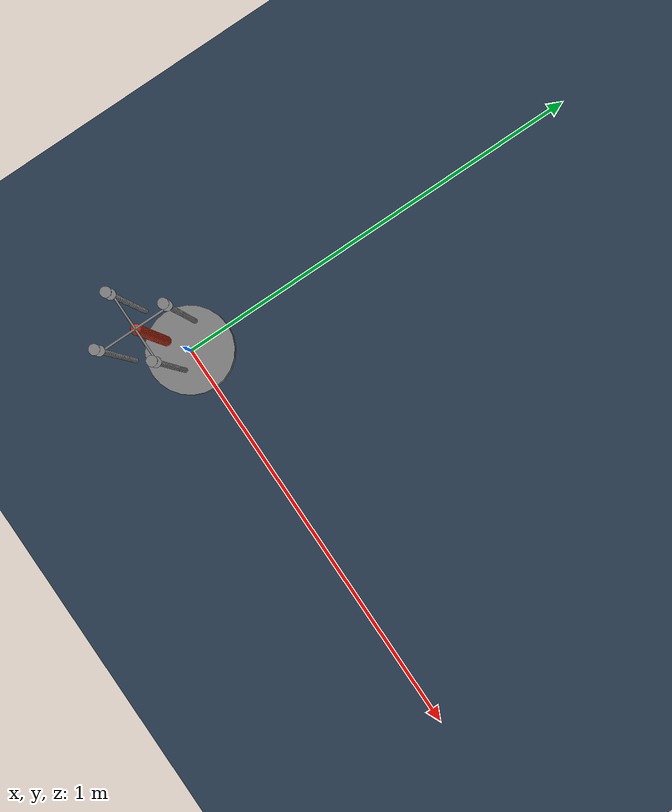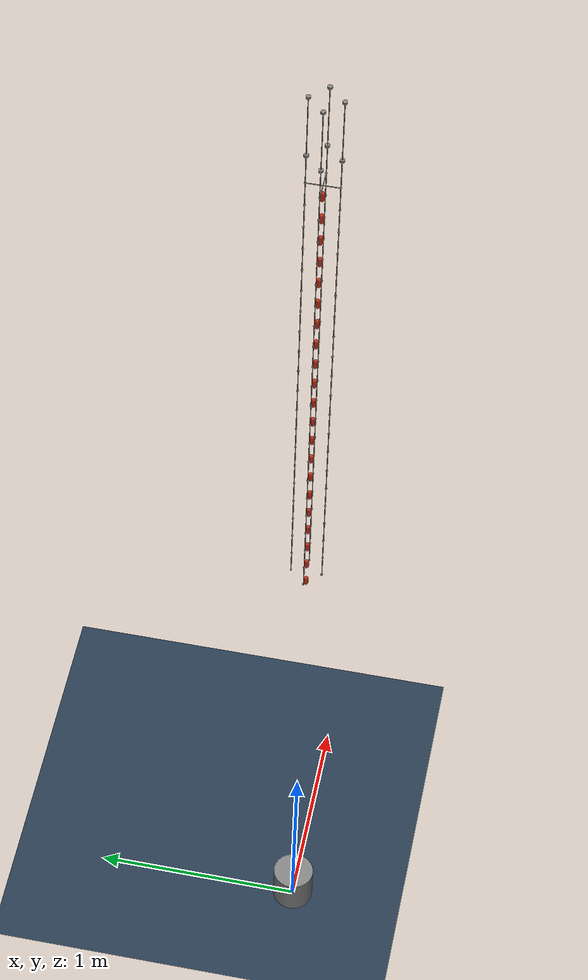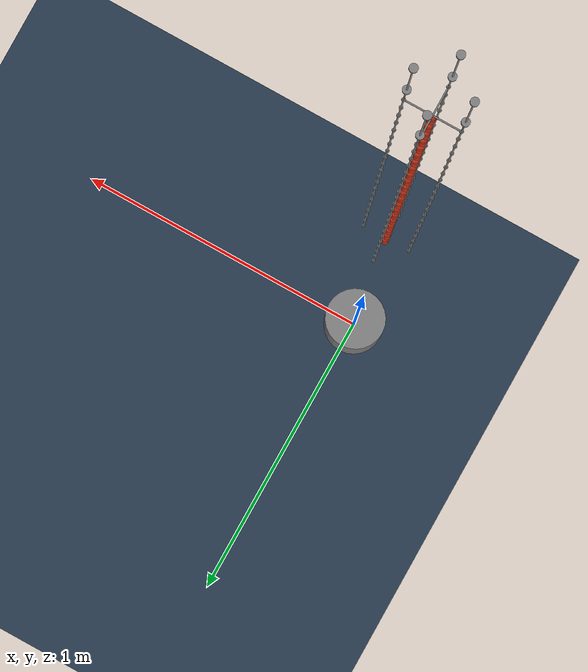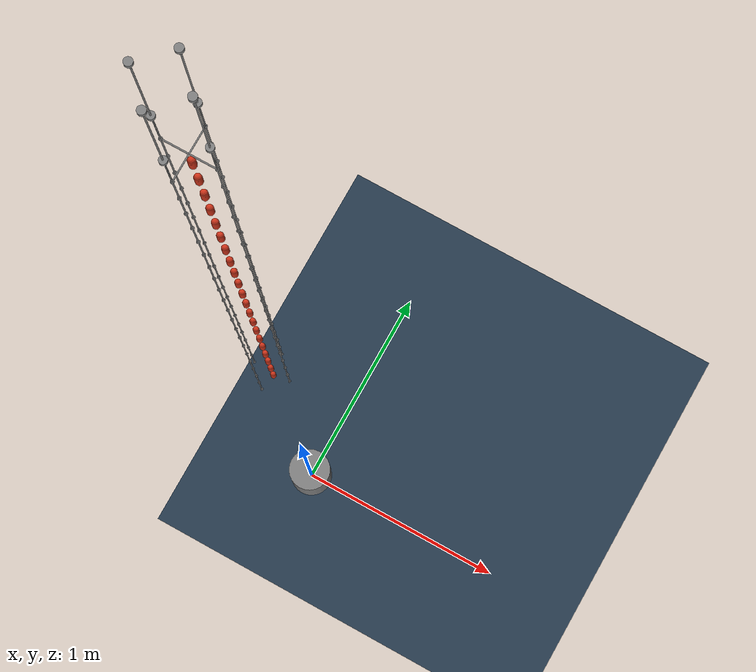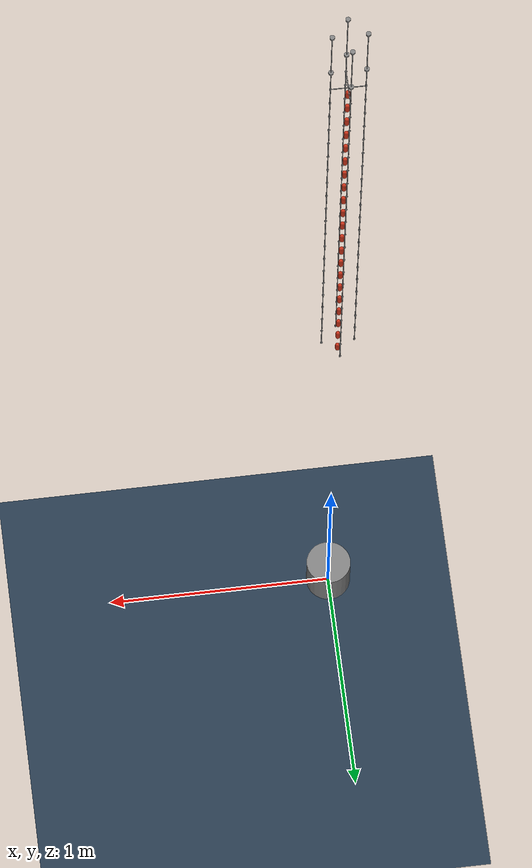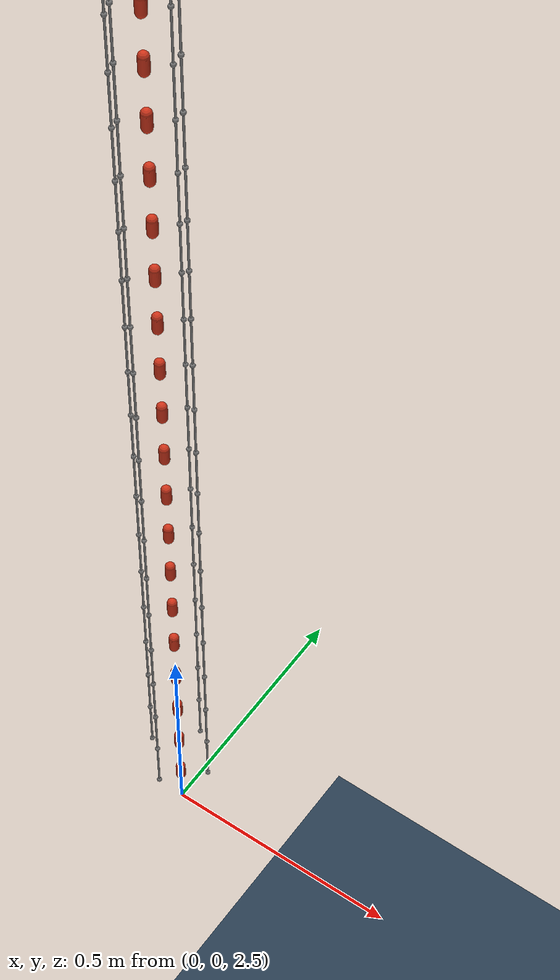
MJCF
<mujoco model="TendonModel">

    <include file="tendon_scene.xml"/>

    <option timestep="0.002" tolerance="1e-10" jacobian="dense" gravity="0 0 -0.981" />
    <!--collision="dynamic"/-->

    <size nconmax="100" njmax="300" nstack="50000"/>

    <worldbody>
    <body name="rope20" pos="0 0 5" axisangle="0 1 0 180">
        <body>
        <geom type="capsule" pos="0 0 0.0000" size=".01 .015" density="100" rgba=".8 .2 .1 1"/>
        <site name="s_0_1_1" pos="-0.0700 0 -0.0600"/>
        <site name="s_0_2_1" pos="0.0700 0 -0.0600"/>
        <site name="s_0_3_1" pos="0 -0.0700 -0.0600"/>
        <site name="s_0_4_1" pos="0 0.0700 -0.0600"/>
        <body>
        <geom type="capsule" pos="0 0 0.1200" size=".01 .015" density="100" rgba=".8 .2 .1 1"/>
        <joint type="hinge" pos="0 0 0.0600" axis="1 0 0" damping="1.0000" stiffness="0.50"/>
        <joint type="hinge" pos="0 0 0.0600" axis="0 1 0" damping="1.0000" stiffness="0.50"/>
        <site name="s_0_1_2" pos="-0.0700 0 0.0600"/>
        <site name="s_0_2_2" pos="0.0700 0 0.0600"/>
        <site name="s_0_3_2" pos="0 -0.0700 0.0600"/>
        <site name="s_0_4_2" pos="0 0.0700 0.0600"/>
        <body>
        <geom type="capsule" pos="0 0 0.2400" size=".01 .015" density="100" rgba=".8 .2 .1 1"/>
        <joint type="hinge" pos="0 0 0.1800" axis="1 0 0" damping="1.0000" stiffness="0.50"/>
        <joint type="hinge" pos="0 0 0.1800" axis="0 1 0" damping="1.0000" stiffness="0.50"/>
        <site name="s_0_1_3" pos="-0.0700 0 0.1800"/>
        <site name="s_0_2_3" pos="0.0700 0 0.1800"/>
        <site name="s_0_3_3" pos="0 -0.0700 0.1800"/>
        <site name="s_0_4_3" pos="0 0.0700 0.1800"/>
        <body>
        <geom type="capsule" pos="0 0 0.3600" size=".01 .015" density="100" rgba=".8 .2 .1 1"/>
        <joint type="hinge" pos="0 0 0.3000" axis="1 0 0" damping="1.0000" stiffness="0.50"/>
        <joint type="hinge" pos="0 0 0.3000" axis="0 1 0" damping="1.0000" stiffness="0.50"/>
        <site name="s_0_1_4" pos="-0.0700 0 0.3000"/>
        <site name="s_0_2_4" pos="0.0700 0 0.3000"/>
        <site name="s_0_3_4" pos="0 -0.0700 0.3000"/>
        <site name="s_0_4_4" pos="0 0.0700 0.3000"/>
        <body>
        <geom type="capsule" pos="0 0 0.4800" size=".01 .015" density="100" rgba=".8 .2 .1 1"/>
        <joint type="hinge" pos="0 0 0.4200" axis="1 0 0" damping="1.0000" stiffness="0.50"/>
        <joint type="hinge" pos="0 0 0.4200" axis="0 1 0" damping="1.0000" stiffness="0.50"/>
        <site name="s_0_1_5" pos="-0.0700 0 0.4200"/>
        <site name="s_0_2_5" pos="0.0700 0 0.4200"/>
        <site name="s_0_3_5" pos="0 -0.0700 0.4200"/>
        <site name="s_0_4_5" pos="0 0.0700 0.4200"/>
        <body>
        <geom type="capsule" pos="0 0 0.6000" size=".01 .015" density="100" rgba=".8 .2 .1 1"/>
        <joint type="hinge" pos="0 0 0.5400" axis="1 0 0" damping="1.0000" stiffness="0.50"/>
        <joint type="hinge" pos="0 0 0.5400" axis="0 1 0" damping="1.0000" stiffness="0.50"/>
        <site name="s_0_1_6" pos="-0.0700 0 0.5400"/>
        <site name="s_0_2_6" pos="0.0700 0 0.5400"/>
        <site name="s_0_3_6" pos="0 -0.0700 0.5400"/>
        <site name="s_0_4_6" pos="0 0.0700 0.5400"/>
        <body>
        <geom type="capsule" pos="0 0 0.7200" size=".01 .015" density="100" rgba=".8 .2 .1 1"/>
        <joint type="hinge" pos="0 0 0.6600" axis="1 0 0" damping="1.0000" stiffness="0.50"/>
        <joint type="hinge" pos="0 0 0.6600" axis="0 1 0" damping="1.0000" stiffness="0.50"/>
        <site name="s_0_1_7" pos="-0.0700 0 0.6600"/>
        <site name="s_0_2_7" pos="0.0700 0 0.6600"/>
        <site name="s_0_3_7" pos="0 -0.0700 0.6600"/>
        <site name="s_0_4_7" pos="0 0.0700 0.6600"/>
        <body>
        <geom type="capsule" pos="0 0 0.8400" size=".01 .015" density="100" rgba=".8 .2 .1 1"/>
        <joint type="hinge" pos="0 0 0.7800" axis="1 0 0" damping="1.0000" stiffness="0.50"/>
        <joint type="hinge" pos="0 0 0.7800" axis="0 1 0" damping="1.0000" stiffness="0.50"/>
        <site name="s_0_1_8" pos="-0.0700 0 0.7800"/>
        <site name="s_0_2_8" pos="0.0700 0 0.7800"/>
        <site name="s_0_3_8" pos="0 -0.0700 0.7800"/>
        <site name="s_0_4_8" pos="0 0.0700 0.7800"/>
        <body>
        <geom type="capsule" pos="0 0 0.9600" size=".01 .015" density="100" rgba=".8 .2 .1 1"/>
        <joint type="hinge" pos="0 0 0.9000" axis="1 0 0" damping="1.0000" stiffness="0.50"/>
        <joint type="hinge" pos="0 0 0.9000" axis="0 1 0" damping="1.0000" stiffness="0.50"/>
        <site name="s_0_1_9" pos="-0.0700 0 0.9000"/>
        <site name="s_0_2_9" pos="0.0700 0 0.9000"/>
        <site name="s_0_3_9" pos="0 -0.0700 0.9000"/>
        <site name="s_0_4_9" pos="0 0.0700 0.9000"/>
        <body>
        <geom type="capsule" pos="0 0 1.0800" size=".01 .015" density="100" rgba=".8 .2 .1 1"/>
        <joint type="hinge" pos="0 0 1.0200" axis="1 0 0" damping="1.0000" stiffness="0.50"/>
        <joint type="hinge" pos="0 0 1.0200" axis="0 1 0" damping="1.0000" stiffness="0.50"/>
        <site name="s_0_1_10" pos="-0.0700 0 1.0200"/>
        <site name="s_0_2_10" pos="0.0700 0 1.0200"/>
        <site name="s_0_3_10" pos="0 -0.0700 1.0200"/>
        <site name="s_0_4_10" pos="0 0.0700 1.0200"/>
        <body>
        <geom type="capsule" pos="0 0 1.2000" size=".01 .015" density="100" rgba=".8 .2 .1 1"/>
        <joint type="hinge" pos="0 0 1.1400" axis="1 0 0" damping="1.0000" stiffness="0.50"/>
        <joint type="hinge" pos="0 0 1.1400" axis="0 1 0" damping="1.0000" stiffness="0.50"/>
        <site name="s_0_1_11" pos="-0.0700 0 1.1400"/>
        <site name="s_0_2_11" pos="0.0700 0 1.1400"/>
        <site name="s_0_3_11" pos="0 -0.0700 1.1400"/>
        <site name="s_0_4_11" pos="0 0.0700 1.1400"/>
        <body>
        <geom type="capsule" pos="0 0 1.3200" size=".01 .015" density="100" rgba=".8 .2 .1 1"/>
        <joint type="hinge" pos="0 0 1.2600" axis="1 0 0" damping="1.0000" stiffness="0.50"/>
        <joint type="hinge" pos="0 0 1.2600" axis="0 1 0" damping="1.0000" stiffness="0.50"/>
        <site name="s_1_1_12" pos="-0.0700 0 1.2600"/>
        <site name="s_1_2_12" pos="0.0700 0 1.2600"/>
        <site name="s_1_3_12" pos="0 -0.0700 1.2600"/>
        <site name="s_1_4_12" pos="0 0.0700 1.2600"/>
        <body>
        <geom type="capsule" pos="0 0 1.4400" size=".01 .015" density="100" rgba=".8 .2 .1 1"/>
        <joint type="hinge" pos="0 0 1.3800" axis="1 0 0" damping="1.0000" stiffness="0.50"/>
        <joint type="hinge" pos="0 0 1.3800" axis="0 1 0" damping="1.0000" stiffness="0.50"/>
        <site name="s_1_1_13" pos="-0.0700 0 1.3800"/>
        <site name="s_1_2_13" pos="0.0700 0 1.3800"/>
        <site name="s_1_3_13" pos="0 -0.0700 1.3800"/>
        <site name="s_1_4_13" pos="0 0.0700 1.3800"/>
        <body>
        <geom type="capsule" pos="0 0 1.5600" size=".01 .015" density="100" rgba=".8 .2 .1 1"/>
        <joint type="hinge" pos="0 0 1.5000" axis="1 0 0" damping="1.0000" stiffness="0.50"/>
        <joint type="hinge" pos="0 0 1.5000" axis="0 1 0" damping="1.0000" stiffness="0.50"/>
        <site name="s_1_1_14" pos="-0.0700 0 1.5000"/>
        <site name="s_1_2_14" pos="0.0700 0 1.5000"/>
        <site name="s_1_3_14" pos="0 -0.0700 1.5000"/>
        <site name="s_1_4_14" pos="0 0.0700 1.5000"/>
        <body>
        <geom type="capsule" pos="0 0 1.6800" size=".01 .015" density="100" rgba=".8 .2 .1 1"/>
        <joint type="hinge" pos="0 0 1.6200" axis="1 0 0" damping="1.0000" stiffness="0.50"/>
        <joint type="hinge" pos="0 0 1.6200" axis="0 1 0" damping="1.0000" stiffness="0.50"/>
        <site name="s_1_1_15" pos="-0.0700 0 1.6200"/>
        <site name="s_1_2_15" pos="0.0700 0 1.6200"/>
        <site name="s_1_3_15" pos="0 -0.0700 1.6200"/>
        <site name="s_1_4_15" pos="0 0.0700 1.6200"/>
        <body>
        <geom type="capsule" pos="0 0 1.8000" size=".01 .015" density="100" rgba=".8 .2 .1 1"/>
        <joint type="hinge" pos="0 0 1.7400" axis="1 0 0" damping="1.0000" stiffness="0.50"/>
        <joint type="hinge" pos="0 0 1.7400" axis="0 1 0" damping="1.0000" stiffness="0.50"/>
        <site name="s_1_1_16" pos="-0.0700 0 1.7400"/>
        <site name="s_1_2_16" pos="0.0700 0 1.7400"/>
        <site name="s_1_3_16" pos="0 -0.0700 1.7400"/>
        <site name="s_1_4_16" pos="0 0.0700 1.7400"/>
        <body>
        <geom type="capsule" pos="0 0 1.9200" size=".01 .015" density="100" rgba=".8 .2 .1 1"/>
        <joint type="hinge" pos="0 0 1.8600" axis="1 0 0" damping="1.0000" stiffness="0.50"/>
        <joint type="hinge" pos="0 0 1.8600" axis="0 1 0" damping="1.0000" stiffness="0.50"/>
        <site name="s_1_1_17" pos="-0.0700 0 1.8600"/>
        <site name="s_1_2_17" pos="0.0700 0 1.8600"/>
        <site name="s_1_3_17" pos="0 -0.0700 1.8600"/>
        <site name="s_1_4_17" pos="0 0.0700 1.8600"/>
        <body>
        <geom type="capsule" pos="0 0 2.0400" size=".01 .015" density="100" rgba=".8 .2 .1 1"/>
        <joint type="hinge" pos="0 0 1.9800" axis="1 0 0" damping="1.0000" stiffness="0.50"/>
        <joint type="hinge" pos="0 0 1.9800" axis="0 1 0" damping="1.0000" stiffness="0.50"/>
        <site name="s_1_1_18" pos="-0.0700 0 1.9800"/>
        <site name="s_1_2_18" pos="0.0700 0 1.9800"/>
        <site name="s_1_3_18" pos="0 -0.0700 1.9800"/>
        <site name="s_1_4_18" pos="0 0.0700 1.9800"/>
        <body>
        <geom type="capsule" pos="0 0 2.1600" size=".01 .015" density="100" rgba=".8 .2 .1 1"/>
        <joint type="hinge" pos="0 0 2.1000" axis="1 0 0" damping="1.0000" stiffness="0.50"/>
        <joint type="hinge" pos="0 0 2.1000" axis="0 1 0" damping="1.0000" stiffness="0.50"/>
        <site name="s_1_1_19" pos="-0.0700 0 2.1000"/>
        <site name="s_1_2_19" pos="0.0700 0 2.1000"/>
        <site name="s_1_3_19" pos="0 -0.0700 2.1000"/>
        <site name="s_1_4_19" pos="0 0.0700 2.1000"/>
        <body>
        <geom type="capsule" pos="0 0 2.2800" size=".01 .015" density="100" rgba=".8 .2 .1 1"/>
        <joint type="hinge" pos="0 0 2.2200" axis="1 0 0" damping="1.0000" stiffness="0.50"/>
        <joint type="hinge" pos="0 0 2.2200" axis="0 1 0" damping="1.0000" stiffness="0.50"/>
        <site name="s_1_1_20" pos="-0.0700 0 2.2200"/>
        <site name="s_1_2_20" pos="0.0700 0 2.2200"/>
        <site name="s_1_3_20" pos="0 -0.0700 2.2200"/>
        <site name="s_1_4_20" pos="0 0.0700 2.2200"/>
        <body>
        <geom type="capsule" pos="0 0 2.4000" size=".01 .015" density="100" rgba=".8 .2 .1 1"/>
        <site name="s_1_3_21" pos="0 -0.0700 2.3400"/>
        <site name="s_1_4_21" pos="0 0.0700 2.3400"/>
        <joint type="hinge" pos="0 0 2.3400" axis="1 0 0" damping="1.0000" stiffness="0.50"/>
        <joint type="hinge" pos="0 0 2.3400" axis="0 1 0" damping="1.0000" stiffness="0.50"/>
        <site name="s_1_1_21" pos="-0.0700 0 2.3400"/>
        <site name="s_1_2_21" pos="0.0700 0 2.3400"/>
        <camera name="front_camera" pos="0 0 2.4" axisangle="1 0 0 180"/>
        </body>
        </body>
        </body>
        </body>
        </body>
        </body>
        </body>
        </body>
        </body>
        </body>
        </body>
        </body>
        </body>
        </body>
        </body>
        </body>
        </body>
        </body>
        </body>
        </body>
        </body>
            <body>
                <geom type="cylinder" fromto="-0.0700 0.0000 -0.2000 -0.0700 0.0000 -0.2100" size="0.01"/>
                <joint name="ctrl_1_a" type="slide" axis="0 0 1" limited="true" range="-.1 .1"/>
                <site name="end_1_a" pos="-0.0700 0.0000 -0.2000"/>
            </body>
            <body>
                <geom type="cylinder" fromto="-0.0700 0.0000 -0.5000 -0.0700 0.0000 -0.5100" size="0.01"/>
                <joint name="ctrl_1_b" type="slide" axis="0 0 1" limited="true" range="-.1 .1"/>
                <site name="end_1_b" pos="-0.0700 0.0000 -0.5000"/>
            </body>

            <body>
                <geom type="cylinder" fromto="0.0000 -0.0700 -0.2000 0.0000 -0.0700 -0.2100" size="0.01"/>
                <joint name="ctrl_2_a" type="slide" axis="0 0 1" limited="true" range="-.1 .1"/>
                <site name="end_2_a" pos="0.0000 -0.0700 -0.2000"/>
            </body>
            <body>
                <geom type="cylinder" fromto="0.0000 -0.0700 -0.5000 0.0000 -0.0700 -0.5100" size="0.01"/>
                <joint name="ctrl_2_b" type="slide" axis="0 0 1" limited="true" range="-.1 .1"/>
                <site name="end_2_b" pos="0.0000 -0.0700 -0.5000"/>
            </body>

            <body>
                <geom type="cylinder" fromto="0.0700 0.0000 -0.2000 0.0700 0.0000 -0.2100" size="0.01"/>
                <joint name="ctrl_3_a" type="slide" axis="0 0 1" limited="true" range="-.1 .1"/>
                <site name="end_3_a" pos="0.0700 0.0000 -0.2000"/>
            </body>
            <body>
                <geom type="cylinder" fromto="0.0700 0.0000 -0.5000 0.0700 0.0000 -0.5100" size="0.01"/>
                <joint name="ctrl_3_b" type="slide" axis="0 0 1" limited="true" range="-.1 .1"/>
                <site name="end_3_b" pos="0.0700 0.0000 -0.5000"/>
            </body>

            <body>
                <geom type="cylinder" fromto="0.0000 0.0700 -0.2000 0.0000 0.0700 -0.2100" size="0.01"/>
                <joint name="ctrl_4_a" type="slide" axis="0 0 1" limited="true" range="-.1 .1"/>
                <site name="end_4_a" pos="0.0000 0.0700 -0.2000"/>
            </body>
            <body>
                <geom type="cylinder" fromto="0.0000 0.0700 -0.5000 0.0000 0.0700 -0.5100" size="0.01"/>
                <joint name="ctrl_4_b" type="slide" axis="0 0 1" limited="true" range="-.1 .1"/>
                <site name="end_4_b" pos="0.0000 0.0700 -0.5000"/>
            </body>
     </body>
    <camera name="global_camera" pos="0 -3 3" axisangle="-1 0 0 90" fovy="90"/>
    </worldbody>
    <tendon>
        <spatial width="0.002" limited="true" range="1.399 1.4">
            <site site="end_1_a"/>
        <site site="s_0_1_1"/>
        <site site="s_0_1_2"/>
        <site site="s_0_1_3"/>
        <site site="s_0_1_4"/>
        <site site="s_0_1_5"/>
        <site site="s_0_1_6"/>
        <site site="s_0_1_7"/>
        <site site="s_0_1_8"/>
        <site site="s_0_1_9"/>
        <site site="s_0_1_10"/>
        <site site="s_0_1_11"/>
        </spatial>
        <spatial width="0.002" limited="true" range="1.839 1.84">
            <site site="end_1_b"/>
        <site site="s_0_1_1"/>
        <site site="s_0_2_1"/>
        <site site="s_0_2_2"/>
        <site site="s_0_2_3"/>
        <site site="s_0_2_4"/>
        <site site="s_0_2_5"/>
        <site site="s_0_2_6"/>
        <site site="s_0_2_7"/>
        <site site="s_0_2_8"/>
        <site site="s_0_2_9"/>
        <site site="s_0_2_10"/>
        <site site="s_0_2_11"/>
        </spatial>
        <spatial width="0.002" limited="true" range="1.399 1.4">
            <site site="end_2_a"/>
        <site site="s_0_3_1"/>
        <site site="s_0_3_2"/>
        <site site="s_0_3_3"/>
        <site site="s_0_3_4"/>
        <site site="s_0_3_5"/>
        <site site="s_0_3_6"/>
        <site site="s_0_3_7"/>
        <site site="s_0_3_8"/>
        <site site="s_0_3_9"/>
        <site site="s_0_3_10"/>
        <site site="s_0_3_11"/>
        </spatial>
        <spatial width="0.002" limited="true" range="1.839 1.84">
            <site site="end_2_b"/>
        <site site="s_0_3_1"/>
        <site site="s_0_4_1"/>
        <site site="s_0_4_2"/>
        <site site="s_0_4_3"/>
        <site site="s_0_4_4"/>
        <site site="s_0_4_5"/>
        <site site="s_0_4_6"/>
        <site site="s_0_4_7"/>
        <site site="s_0_4_8"/>
        <site site="s_0_4_9"/>
        <site site="s_0_4_10"/>
        <site site="s_0_4_11"/>
        </spatial>
        <spatial width="0.002" limited="true" range="2.739 2.74">
            <site site="end_3_a"/>
        <site site="s_0_2_1"/>
        <site site="s_0_1_1"/>
        <site site="s_0_1_2"/>
        <site site="s_0_1_3"/>
        <site site="s_0_1_4"/>
        <site site="s_0_1_5"/>
        <site site="s_0_1_6"/>
        <site site="s_0_1_7"/>
        <site site="s_0_1_8"/>
        <site site="s_0_1_9"/>
        <site site="s_0_1_10"/>
        <site site="s_0_1_11"/>
        <site site="s_1_1_12"/>
        <site site="s_1_1_13"/>
        <site site="s_1_1_14"/>
        <site site="s_1_1_15"/>
        <site site="s_1_1_16"/>
        <site site="s_1_1_17"/>
        <site site="s_1_1_18"/>
        <site site="s_1_1_19"/>
        <site site="s_1_1_20"/>
        <site site="s_1_1_21"/>
        </spatial>
        <spatial width="0.002" limited="true" range="2.899 2.9">
            <site site="end_3_b"/>
        <site site="s_0_2_1"/>
        <site site="s_0_2_2"/>
        <site site="s_0_2_3"/>
        <site site="s_0_2_4"/>
        <site site="s_0_2_5"/>
        <site site="s_0_2_6"/>
        <site site="s_0_2_7"/>
        <site site="s_0_2_8"/>
        <site site="s_0_2_9"/>
        <site site="s_0_2_10"/>
        <site site="s_0_2_11"/>
        <site site="s_1_2_12"/>
        <site site="s_1_2_13"/>
        <site site="s_1_2_14"/>
        <site site="s_1_2_15"/>
        <site site="s_1_2_16"/>
        <site site="s_1_2_17"/>
        <site site="s_1_2_18"/>
        <site site="s_1_2_19"/>
        <site site="s_1_2_20"/>
        <site site="s_1_2_21"/>
        </spatial>
        <spatial width="0.002" limited="true" range="2.739 2.74">
            <site site="end_4_a"/>
        <site site="s_0_4_1"/>
        <site site="s_0_3_1"/>
        <site site="s_0_3_2"/>
        <site site="s_0_3_3"/>
        <site site="s_0_3_4"/>
        <site site="s_0_3_5"/>
        <site site="s_0_3_6"/>
        <site site="s_0_3_7"/>
        <site site="s_0_3_8"/>
        <site site="s_0_3_9"/>
        <site site="s_0_3_10"/>
        <site site="s_0_3_11"/>
        <site site="s_1_3_12"/>
        <site site="s_1_3_13"/>
        <site site="s_1_3_14"/>
        <site site="s_1_3_15"/>
        <site site="s_1_3_16"/>
        <site site="s_1_3_17"/>
        <site site="s_1_3_18"/>
        <site site="s_1_3_19"/>
        <site site="s_1_3_20"/>
        <site site="s_1_3_21"/>
        </spatial>
        <spatial width="0.002" limited="true" range="2.899 2.9">
            <site site="end_4_b"/>
        <site site="s_0_4_1"/>
        <site site="s_0_4_2"/>
        <site site="s_0_4_3"/>
        <site site="s_0_4_4"/>
        <site site="s_0_4_5"/>
        <site site="s_0_4_6"/>
        <site site="s_0_4_7"/>
        <site site="s_0_4_8"/>
        <site site="s_0_4_9"/>
        <site site="s_0_4_10"/>
        <site site="s_0_4_11"/>
        <site site="s_1_4_12"/>
        <site site="s_1_4_13"/>
        <site site="s_1_4_14"/>
        <site site="s_1_4_15"/>
        <site site="s_1_4_16"/>
        <site site="s_1_4_17"/>
        <site site="s_1_4_18"/>
        <site site="s_1_4_19"/>
        <site site="s_1_4_20"/>
        <site site="s_1_4_21"/>
        </spatial>
    </tendon>
    <actuator>
    <position name="ctrl_1_a" gear="50" joint="ctrl_1_a"/> <!--ctrllimited="true" ctrlrange="-5 5"/-->
    <position name="ctrl_1_b" gear="50" joint="ctrl_1_b"/> <!--ctrllimited="true" ctrlrange="-5 5"/-->
    <position name="ctrl_2_a" gear="50" joint="ctrl_2_a"/> <!--ctrllimited="true" ctrlrange="-5 5"/-->
    <position name="ctrl_2_b" gear="50" joint="ctrl_2_b"/> <!--ctrllimited="true" ctrlrange="-5 5"/-->
    <position name="ctrl_3_a" gear="50" joint="ctrl_3_a"/> <!--ctrllimited="true" ctrlrange="-5 5"/-->
    <position name="ctrl_3_b" gear="50" joint="ctrl_3_b"/> <!--ctrllimited="true" ctrlrange="-5 5"/-->
    <position name="ctrl_4_a" gear="50" joint="ctrl_4_a"/> <!--ctrllimited="true" ctrlrange="-5 5"/-->
    <position name="ctrl_4_b" gear="50" joint="ctrl_4_b"/> <!--ctrllimited="true" ctrlrange="-5 5"/-->
    </actuator>
</mujoco>

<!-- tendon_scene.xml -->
<mujoco>

    <statistic extent="2" meansize=".05"/>

    <option timestep="0.005" solver="Newton" iterations="30" tolerance="1e-10" jacobian="sparse" cone="pyramidal"/>

    <visual>
        <rgba haze="0.15 0.25 0.35 1"/>
        <quality shadowsize="2048"/>
        <map stiffness="700" shadowscale="0.5" fogstart="10" fogend="15" zfar="40" haze="0.3"/>
    </visual>

    <asset>
        <texture type="skybox" builtin="gradient" rgb1="0.3 0.5 0.7" rgb2="0 0 0" width="512" height="512"/>
        <texture name="texplane" type="2d" builtin="checker" rgb1=".2 .3 .4" rgb2=".1 0.15 0.2"
            width="512" height="512" mark="cross" markrgb=".8 .8 .8"/>

        <material name="matplane" reflectance="0" texture="texplane" texrepeat="1 1" texuniform="true"/>
    </asset>

    <worldbody>
        <light directional="true" diffuse=".4 .4 .4" specular="0.1 0.1 0.1" pos="0 0 5.0" dir="0 0 -1" castshadow="false"/>
        <light directional="true" diffuse=".6 .6 .6" specular="0.2 0.2 0.2" pos="0 0 4" dir="0 0 -1" castshadow="false"/>

        <geom name="ground" type="plane" size="0 0 1" pos="0 0 0" quat="1 0 0 0" material="matplane" condim="1"/>

        <body>
            <geom name="particle" type="cylinder" size=".1 .1" pos="0 0 .1"/>
            <joint name="slide_x" type="slide" pos="0 0 0" axis="1 0 0"/>
            <joint name="slide_y" type="slide" pos="0 0 0" axis="0 1 0"/>
        </body>
    </worldbody>
</mujoco>
